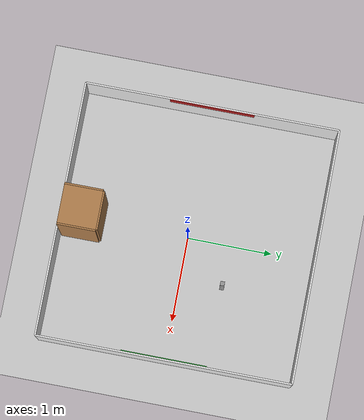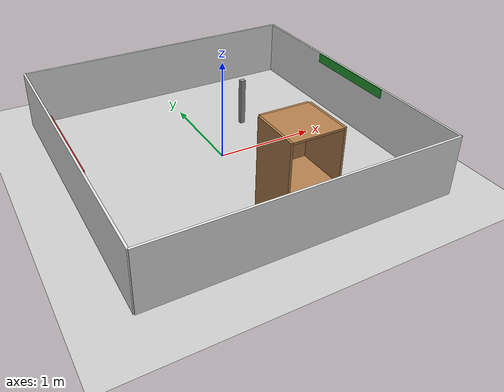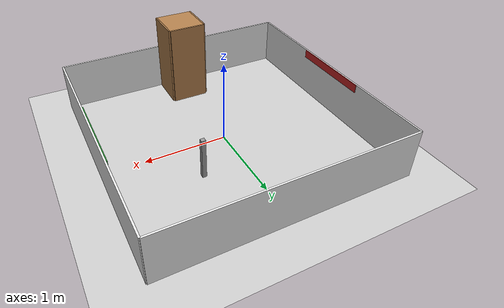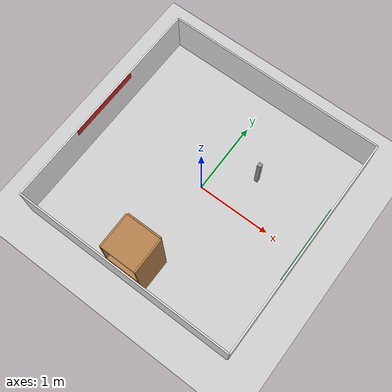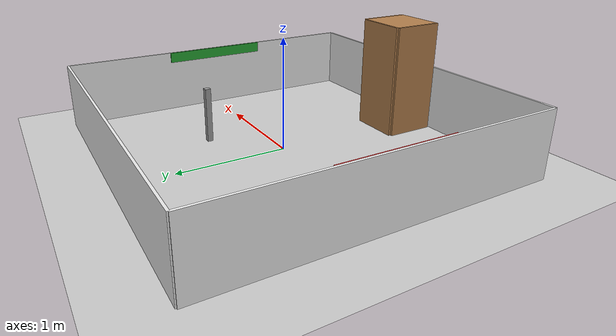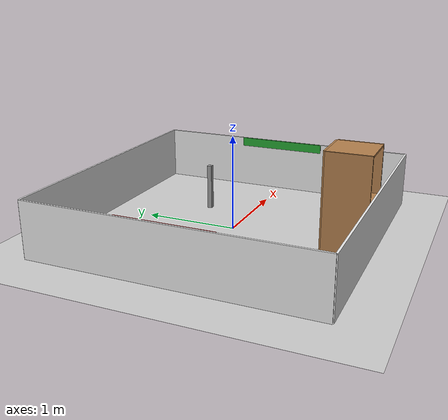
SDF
<sdf version="1.7">
 <world name="default">
  <light name="sun" type="directional">
   <pose>0 0 10 0 -0 0</pose>
   <diffuse>0.8 0.8 0.8 1</diffuse>
   <specular>0.2 0.2 0.2 1</specular>
   <attenuation>
    <range>1000</range>
    <constant>0.9</constant>
    <linear>0.01</linear>
    <quadratic>0.001</quadratic>
   </attenuation>
   <direction>-0.5 0.1 -0.9</direction>
   <spot><inner_angle>0</inner_angle><outer_angle>0</outer_angle><falloff>0</falloff></spot>
  </light>
  <model name="ground_plane">
   <static>1</static>
   <link name="link">
    <collision name="collision">
     <geometry><plane><normal>0 0 1</normal><size>100 100</size></plane></geometry>
     <surface>
      <contact><collide_bitmask>65535</collide_bitmask></contact>
      <friction><ode><mu>100</mu><mu2>50</mu2></ode></friction>
     </surface>
    </collision>
    <visual name="visual">
     <cast_shadows>0</cast_shadows>
     <geometry><plane><normal>0 0 1</normal><size>100 100</size></plane></geometry>
     <material>
      <script><uri>file://media/materials/scripts/gazebo.material</uri><name>Gazebo/Grey</name></script>
     </material>
    </visual>
   </link>
  </model>
  <gravity>0 0 -9.8</gravity>
  <magnetic_field>6e-06 2.3e-05 -4.2e-05</magnetic_field>
  <atmosphere type="adiabatic"/>
  <physics type="ode">
   <max_step_size>0.001</max_step_size>
   <real_time_factor>1</real_time_factor>
   <real_time_update_rate>1000</real_time_update_rate>
  </physics>
  <scene><ambient>0.4 0.4 0.4 1</ambient><background>0.7 0.7 0.7 1</background><shadows>1</shadows></scene>
  <audio><device>default</device></audio>
  <spherical_coordinates>
   <surface_model>EARTH_WGS84</surface_model>
   <latitude_deg>0</latitude_deg>
   <longitude_deg>0</longitude_deg>
   <elevation>0</elevation>
   <heading_deg>0</heading_deg>
  </spherical_coordinates>
  <model name="wall_1">
   <static>1</static>
   <pose>0.0 -1.5 0.3 0 0 0</pose>
   <link name="link">
    <collision name="collision"><geometry><box><size>3 0.02 0.6</size></box></geometry></collision>
    <visual name="visual">
     <geometry><box><size>3 0.02 0.6</size></box></geometry>
     <material>
      <script><name>Gazebo/White</name><uri>file://media/materials/scripts/gazebo.material</uri></script>
     </material>
    </visual>
   </link>
  </model>
  <model name="wall_2">
   <static>1</static>
   <pose>0.0 1.5 0.3 0 0 0</pose>
   <link name="link">
    <collision name="collision"><geometry><box><size>3 0.02 0.6</size></box></geometry></collision>
    <visual name="visual">
     <geometry><box><size>3 0.02 0.6</size></box></geometry>
     <material>
      <script><name>Gazebo/White</name><uri>file://media/materials/scripts/gazebo.material</uri></script>
     </material>
    </visual>
   </link>
  </model>
  <model name="wall_3">
   <static>1</static>
   <pose>-1.5 0.0 0.3 0 0 0</pose>
   <link name="link">
    <collision name="collision"><geometry><box><size>0.02 3 0.6</size></box></geometry></collision>
    <visual name="visual">
     <geometry><box><size>0.02 3 0.6</size></box></geometry>
     <material>
      <script><name>Gazebo/White</name><uri>file://media/materials/scripts/gazebo.material</uri></script>
     </material>
    </visual>
   </link>
  </model>
  <model name="wall_4">
   <static>1</static>
   <pose>1.5 0.0 0.3 0 0 0</pose>
   <link name="link">
    <collision name="collision"><geometry><box><size>0.02 3 0.6</size></box></geometry></collision>
    <visual name="visual">
     <geometry><box><size>0.02 3 0.6</size></box></geometry>
     <material>
      <script><name>Gazebo/White</name><uri>file://media/materials/scripts/gazebo.material</uri></script>
     </material>
    </visual>
   </link>
  </model>
  <model name="indicator_greem">
   <static>1</static>
   <pose>1.485 0.0 0.55 0 0 0</pose>
   <link name="link">
    <visual name="visual">
     <geometry><box><size>0.01 1 0.1</size></box></geometry>
     <material>
      <script><name>Gazebo/Green</name><uri>file://media/materials/scripts/gazebo.material</uri></script>
     </material>
    </visual>
   </link>
  </model>
  <model name="indicator_red">
   <static>1</static>
   <pose>-1.485 0.0 0.55 0 0 0</pose>
   <link name="link">
    <visual name="visual">
     <geometry><box><size>0.01 1 0.1</size></box></geometry>
     <material>
      <script><name>Gazebo/Red</name><uri>file://media/materials/scripts/gazebo.material</uri></script>
     </material>
    </visual>
   </link>
  </model>
  <model name="obstacle_1">
   <static>1</static>
   <pose>0.5 0.5 0.25 0 0 0</pose>
   <link name="link">
    <collision name="collision"><geometry><box><size>0.05 0.05 0.5</size></box></geometry></collision>
    <visual name="visual">
     <geometry><box><size>0.05 0.05 0.5</size></box></geometry>
     <material>
      <script><name>Gazebo/Grey</name><uri>file://media/materials/scripts/gazebo.material</uri></script>
     </material>
    </visual>
   </link>
  </model>
  <model name="cabinet">
   <static>1</static>
   <link name="cabinet_bottom_plate">
    <inertial>
     <pose>0 0 -1 0 -0 0</pose>
     <inertia><ixx>2.05</ixx><ixy>0</ixy><ixz>0</ixz><iyy>2.05</iyy><iyz>0</iyz><izz>2.05</izz></inertia>
     <mass>25</mass>
    </inertial>
    <collision name="cabinet_bottom_plate_geom">
     <pose>0 0 0.01 0 -0 0</pose>
     <geometry><box><size>0.45 0.45 0.02</size></box></geometry>
    </collision>
    <visual name="cabinet_bottom_plate_geom_visual">
     <pose>0 0 0.01 0 -0 0</pose>
     <geometry><box><size>0.45 0.45 0.02</size></box></geometry>
     <material>
      <script><uri>file://media/materials/scripts/gazebo.material</uri><name>Gazebo/Wood</name></script>
     </material>
    </visual>
    <collision name="cabinet_bottom_plate_geom_cabinet_back_plate">
     <pose>0.235 0 0.51 0 -0 0</pose>
     <geometry><box><size>0.02 0.45 1.02</size></box></geometry>
    </collision>
    <visual name="cabinet_bottom_plate_geom_cabinet_back_plate_visual">
     <pose>0.235 0 0.51 0 -0 0</pose>
     <geometry><box><size>0.02 0.45 1.02</size></box></geometry>
     <material>
      <script><uri>file://media/materials/scripts/gazebo.material</uri><name>Gazebo/Wood</name></script>
     </material>
    </visual>
    <collision name="cabinet_bottom_plate_geom_cabinet_left_plate">
     <pose>0 0.235 0.51 0 -0 0</pose>
     <geometry><box><size>0.45 0.02 1.02</size></box></geometry>
    </collision>
    <visual name="cabinet_bottom_plate_geom_cabinet_left_plate_visual">
     <pose>0 0.235 0.51 0 -0 0</pose>
     <geometry><box><size>0.45 0.02 1.02</size></box></geometry>
     <material>
      <script><uri>file://media/materials/scripts/gazebo.material</uri><name>Gazebo/Wood</name></script>
     </material>
    </visual>
    <collision name="cabinet_bottom_plate_geom_cabinet_middle_plate">
     <pose>0 0 0.51 0 -0 0</pose>
     <geometry><box><size>0.45 0.45 0.02</size></box></geometry>
    </collision>
    <visual name="cabinet_bottom_plate_geom_cabinet_middle_plate_visual">
     <pose>0 0 0.51 0 -0 0</pose>
     <geometry><box><size>0.45 0.45 0.02</size></box></geometry>
     <material>
      <script><uri>file://media/materials/scripts/gazebo.material</uri><name>Gazebo/Wood</name></script>
     </material>
    </visual>
    <collision name="cabinet_bottom_plate_geom_cabinet_right_plate">
     <pose>0 -0.235 0.51 0 -0 0</pose>
     <geometry><box><size>0.45 0.02 1.02</size></box></geometry>
    </collision>
    <visual name="cabinet_bottom_plate_geom_cabinet_right_plate_visual">
     <pose>0 -0.235 0.51 0 -0 0</pose>
     <geometry><box><size>0.45 0.02 1.02</size></box></geometry>
     <material>
      <script><uri>file://media/materials/scripts/gazebo.material</uri><name>Gazebo/Wood</name></script>
     </material>
    </visual>
    <collision name="cabinet_bottom_plate_geom_cabinet_top_plate">
     <pose>0 0 1.01 0 -0 0</pose>
     <geometry><box><size>0.45 0.45 0.02</size></box></geometry>
    </collision>
    <visual name="cabinet_bottom_plate_geom_cabinet_top_plate_visual">
     <pose>0 0 1.01 0 -0 0</pose>
     <geometry><box><size>0.45 0.45 0.02</size></box></geometry>
     <material>
      <script><uri>file://media/materials/scripts/gazebo.material</uri><name>Gazebo/Wood</name></script>
     </material>
    </visual>
   </link>
   <pose>0.0 -1.25 0 0 0 1.57296</pose>
   <static>1</static>
  </model>
 </world>
</sdf>
